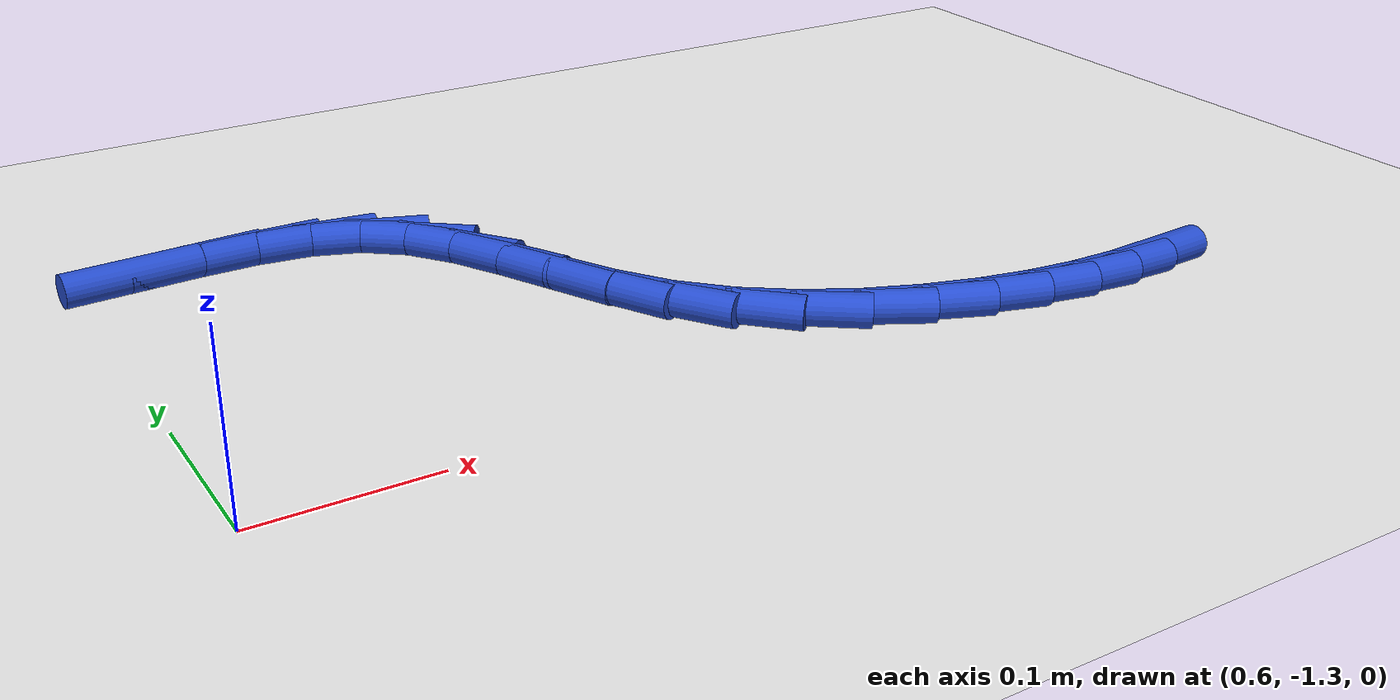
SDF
<sdf version="1.6">
 <world name="default">
  <model name="ground_plane">
   <static>1</static>
   <link name="link">
    <collision name="collision">
     <geometry><plane><normal>0 0 1</normal><size>100 100</size></plane></geometry>
     <surface><friction><ode><mu>100</mu><mu2>50</mu2></ode></friction></surface>
    </collision>
    <visual name="visual">
     <cast_shadows>0</cast_shadows>
     <geometry><plane><normal>0 0 1</normal><size>100 100</size></plane></geometry>
     <material>
      <script><uri>file://media/materials/scripts/gazebo.material</uri><name>Gazebo/WhiteGlow</name></script>
     </material>
    </visual>
   </link>
  </model>
  <model name="line">
   <link name="link_184">
    <pose>1.1441076651525743 -1.3023943859045795 0.01 0 1.57 0.06380477477058473</pose>
    <collision name="collision">
     <geometry><cylinder><radius>0.01</radius><length>0.08</length></cylinder></geometry>
    </collision>
    <visual name="visual">
     <material>
      <script><name>Gazebo/Blue</name><uri>file://media/materials/scripts/gazebo.material</uri></script>
     </material>
     <geometry><cylinder><radius>0.01</radius><length>0.08</length></cylinder></geometry>
    </visual>
   </link>
   <link name="link_185">
    <pose>1.1148091728080345 -1.3042663105319063 0.01 0 1.57 -0.019839703493453226</pose>
    <collision name="collision">
     <geometry><cylinder><radius>0.01</radius><length>0.08</length></cylinder></geometry>
    </collision>
    <visual name="visual">
     <material>
      <script><name>Gazebo/Blue</name><uri>file://media/materials/scripts/gazebo.material</uri></script>
     </material>
     <geometry><cylinder><radius>0.01</radius><length>0.08</length></cylinder></geometry>
    </visual>
   </link>
   <link name="link_186">
    <pose>1.0851615394862846 -1.3036780330907816 0.01 0 1.57 -0.10769785926479465</pose>
    <collision name="collision">
     <geometry><cylinder><radius>0.01</radius><length>0.08</length></cylinder></geometry>
    </collision>
    <visual name="visual">
     <material>
      <script><name>Gazebo/Blue</name><uri>file://media/materials/scripts/gazebo.material</uri></script>
     </material>
     <geometry><cylinder><radius>0.01</radius><length>0.08</length></cylinder></geometry>
    </visual>
   </link>
   <link name="link_187">
    <pose>1.0549417263893988 -1.3004107820389308 0.01 0 1.57 -0.1962168797735379</pose>
    <collision name="collision">
     <geometry><cylinder><radius>0.01</radius><length>0.08</length></cylinder></geometry>
    </collision>
    <visual name="visual">
     <material>
      <script><name>Gazebo/Blue</name><uri>file://media/materials/scripts/gazebo.material</uri></script>
     </material>
     <geometry><cylinder><radius>0.01</radius><length>0.08</length></cylinder></geometry>
    </visual>
   </link>
   <link name="link_188">
    <pose>1.0239266947194516 -1.2942457858340797 0.01 0 1.57 -0.2833164192544979</pose>
    <collision name="collision">
     <geometry><cylinder><radius>0.01</radius><length>0.08</length></cylinder></geometry>
    </collision>
    <visual name="visual">
     <material>
      <script><name>Gazebo/Blue</name><uri>file://media/materials/scripts/gazebo.material</uri></script>
     </material>
     <geometry><cylinder><radius>0.01</radius><length>0.08</length></cylinder></geometry>
    </visual>
   </link>
   <link name="link_189">
    <pose>0.9920062908828751 -1.284952210944718 0.01 0 1.57 -0.3789724225767137</pose>
    <collision name="collision">
     <geometry><cylinder><radius>0.01</radius><length>0.08</length></cylinder></geometry>
    </collision>
    <visual name="visual">
     <material>
      <script><name>Gazebo/Blue</name><uri>file://media/materials/scripts/gazebo.material</uri></script>
     </material>
     <geometry><cylinder><radius>0.01</radius><length>0.08</length></cylinder></geometry>
    </visual>
   </link>
   <link name="link_190">
    <pose>0.9599866929350502 -1.272201312137374 0.01 0 1.57 -0.4930266093853703</pose>
    <collision name="collision">
     <geometry><cylinder><radius>0.01</radius><length>0.08</length></cylinder></geometry>
    </collision>
    <visual name="visual">
     <material>
      <script><name>Gazebo/Blue</name><uri>file://media/materials/scripts/gazebo.material</uri></script>
     </material>
     <geometry><cylinder><radius>0.01</radius><length>0.08</length></cylinder></geometry>
    </visual>
   </link>
   <link name="link_191">
    <pose>0.9291192349348212 -1.2556167784506134 0.01 0 1.57 -0.6309957751674835</pose>
    <collision name="collision">
     <geometry><cylinder><radius>0.01</radius><length>0.08</length></cylinder></geometry>
    </collision>
    <visual name="visual">
     <material>
      <script><name>Gazebo/Blue</name><uri>file://media/materials/scripts/gazebo.material</uri></script>
     </material>
     <geometry><cylinder><radius>0.01</radius><length>0.08</length></cylinder></geometry>
    </visual>
   </link>
   <link name="link_192">
    <pose>0.9006582043993134 -1.234821983340615 0.01 0 1.57 -0.7969828258593706</pose>
    <collision name="collision">
     <geometry><cylinder><radius>0.01</radius><length>0.08</length></cylinder></geometry>
    </collision>
    <visual name="visual">
     <material>
      <script><name>Gazebo/Blue</name><uri>file://media/materials/scripts/gazebo.material</uri></script>
     </material>
     <geometry><cylinder><radius>0.01</radius><length>0.08</length></cylinder></geometry>
    </visual>
   </link>
   <link name="link_193">
    <pose>0.8758578888456542 -1.209440300263561 0.01 0 1.57 -0.9744850942407565</pose>
    <collision name="collision">
     <geometry><cylinder><radius>0.01</radius><length>0.08</length></cylinder></geometry>
    </collision>
    <visual name="visual">
     <material>
      <script><name>Gazebo/Blue</name><uri>file://media/materials/scripts/gazebo.material</uri></script>
     </material>
     <geometry><cylinder><radius>0.01</radius><length>0.08</length></cylinder></geometry>
    </visual>
   </link>
   <link name="link_194">
    <pose>0.8555320826412709 -1.1794937057306911 0.01 0 1.57 -1.087012282435095</pose>
    <collision name="collision">
     <geometry><cylinder><radius>0.01</radius><length>0.08</length></cylinder></geometry>
    </collision>
    <visual name="visual">
     <material>
      <script><name>Gazebo/Blue</name><uri>file://media/materials/scripts/gazebo.material</uri></script>
     </material>
     <geometry><cylinder><radius>0.01</radius><length>0.08</length></cylinder></geometry>
    </visual>
   </link>
   <link name="link_195">
    <pose>0.8384041635012943 -1.1468957980969154 0.01 0 1.57 -1.1209457257791167</pose>
    <collision name="collision">
     <geometry><cylinder><radius>0.01</radius><length>0.08</length></cylinder></geometry>
    </collision>
    <visual name="visual">
     <material>
      <script><name>Gazebo/Blue</name><uri>file://media/materials/scripts/gazebo.material</uri></script>
     </material>
     <geometry><cylinder><radius>0.01</radius><length>0.08</length></cylinder></geometry>
    </visual>
   </link>
   <link name="link_196">
    <pose>0.8225780411773375 -1.1141207334078604 0.01 0 1.57 -1.0766186075263215</pose>
    <collision name="collision">
     <geometry><cylinder><radius>0.01</radius><length>0.08</length></cylinder></geometry>
    </collision>
    <visual name="visual">
     <material>
      <script><name>Gazebo/Blue</name><uri>file://media/materials/scripts/gazebo.material</uri></script>
     </material>
     <geometry><cylinder><radius>0.01</radius><length>0.08</length></cylinder></geometry>
    </visual>
   </link>
   <link name="link_197">
    <pose>0.8061575288430654 -1.0836427551027141 0.01 0 1.57 -0.9365428237945743</pose>
    <collision name="collision">
     <geometry><cylinder><radius>0.01</radius><length>0.08</length></cylinder></geometry>
    </collision>
    <visual name="visual">
     <material>
      <script><name>Gazebo/Blue</name><uri>file://media/materials/scripts/gazebo.material</uri></script>
     </material>
     <geometry><cylinder><radius>0.01</radius><length>0.08</length></cylinder></geometry>
    </visual>
   </link>
   <link name="link_198">
    <pose>0.7872464396721427 -1.0579361066206627 0.01 0 1.57 -0.670711762302108</pose>
    <collision name="collision">
     <geometry><cylinder><radius>0.01</radius><length>0.08</length></cylinder></geometry>
    </collision>
    <visual name="visual">
     <material>
      <script><name>Gazebo/Blue</name><uri>file://media/materials/scripts/gazebo.material</uri></script>
     </material>
     <geometry><cylinder><radius>0.01</radius><length>0.08</length></cylinder></geometry>
    </visual>
   </link>
   <link name="link_199">
    <pose>0.7639591460797116 -1.039459657223665 0.01 0 1.57 -0.3470409372662212</pose>
    <collision name="collision">
     <geometry><cylinder><radius>0.01</radius><length>0.08</length></cylinder></geometry>
    </collision>
    <visual name="visual">
     <material>
      <script><name>Gazebo/Blue</name><uri>file://media/materials/scripts/gazebo.material</uri></script>
     </material>
     <geometry><cylinder><radius>0.01</radius><length>0.08</length></cylinder></geometry>
    </visual>
   </link>
   <link name="link_200">
    <pose>0.7354552644439485 -1.0291504087204535 0.01 0 1.57 -0.12174796050577362</pose>
    <collision name="collision">
     <geometry><cylinder><radius>0.01</radius><length>0.08</length></cylinder></geometry>
    </collision>
    <visual name="visual">
     <material>
      <script><name>Gazebo/Blue</name><uri>file://media/materials/scripts/gazebo.material</uri></script>
     </material>
     <geometry><cylinder><radius>0.01</radius><length>0.08</length></cylinder></geometry>
    </visual>
   </link>
   <link name="link_201">
    <pose>0.7028100759914006 -1.0251561691170452 0.01 0 1.57 0.004793276195741882</pose>
    <collision name="collision">
     <geometry><cylinder><radius>0.01</radius><length>0.08</length></cylinder></geometry>
    </collision>
    <visual name="visual">
     <material>
      <script><name>Gazebo/Blue</name><uri>file://media/materials/scripts/gazebo.material</uri></script>
     </material>
     <geometry><cylinder><radius>0.01</radius><length>0.08</length></cylinder></geometry>
    </visual>
   </link>
   <link name="link_202">
    <pose>0.6673037974707434 -1.0253263618201003 0.01 0 1.57 0.05882168884299405</pose>
    <collision name="collision">
     <geometry><cylinder><radius>0.01</radius><length>0.08</length></cylinder></geometry>
    </collision>
    <visual name="visual">
     <material>
      <script><name>Gazebo/Blue</name><uri>file://media/materials/scripts/gazebo.material</uri></script>
     </material>
     <geometry><cylinder><radius>0.01</radius><length>0.08</length></cylinder></geometry>
    </visual>
   </link>
   <link name="link_203">
    <pose>0.6302166456306536 -1.0275104102362789 0.01 0 1.57 0.05470459336790834</pose>
    <collision name="collision">
     <geometry><cylinder><radius>0.01</radius><length>0.08</length></cylinder></geometry>
    </collision>
    <visual name="visual">
     <material>
      <script><name>Gazebo/Blue</name><uri>file://media/materials/scripts/gazebo.material</uri></script>
     </material>
     <geometry><cylinder><radius>0.01</radius><length>0.08</length></cylinder></geometry>
    </visual>
   </link>
  </model>
 </world>
</sdf>
